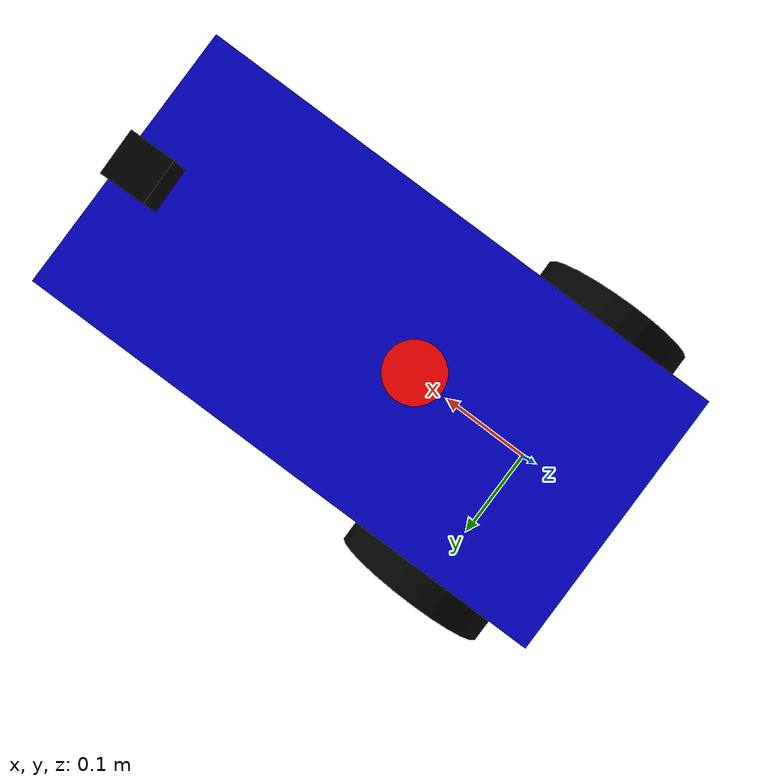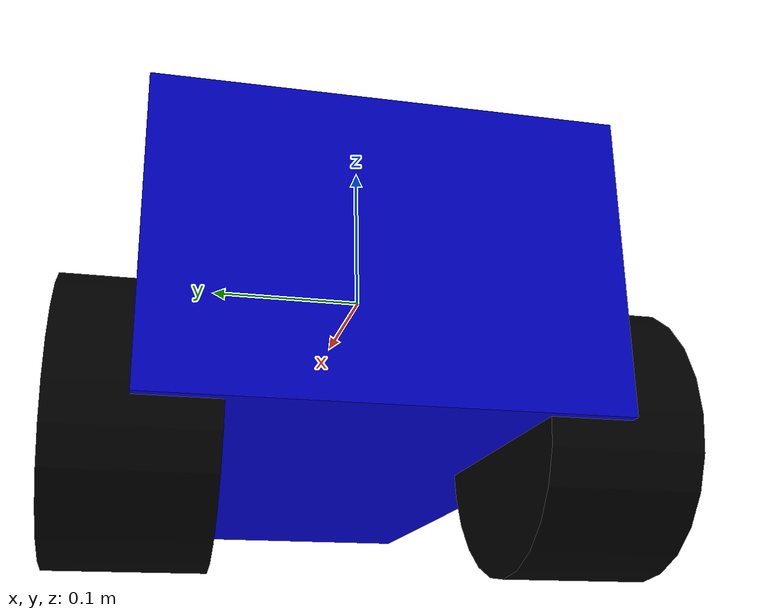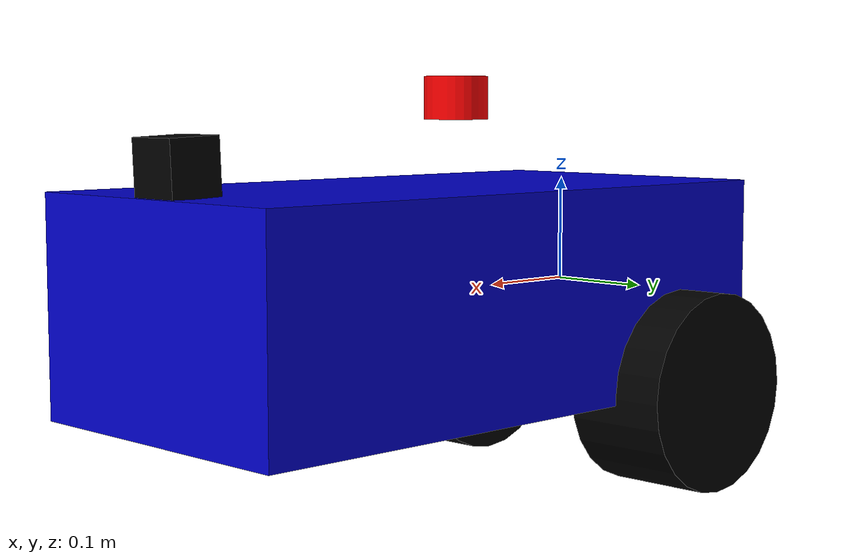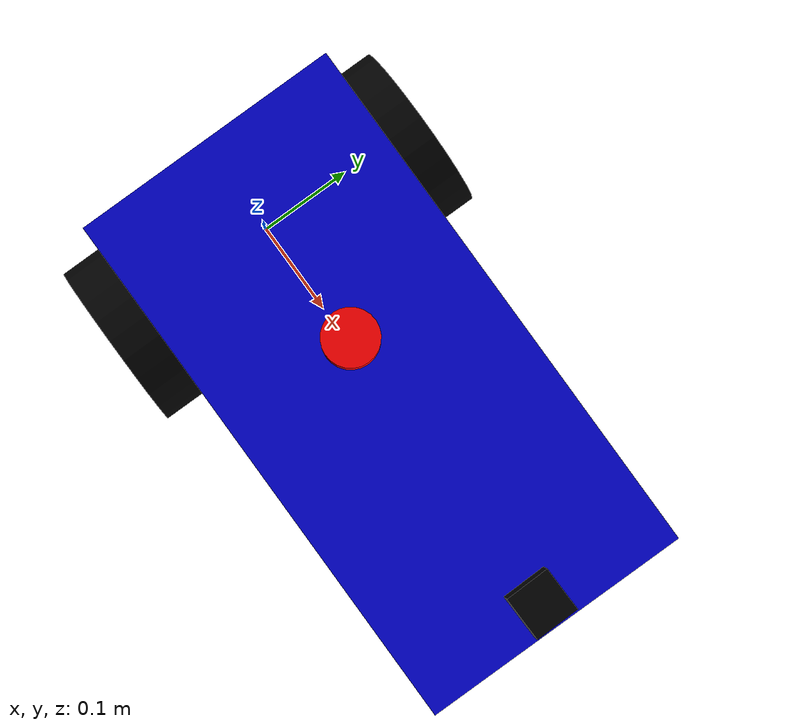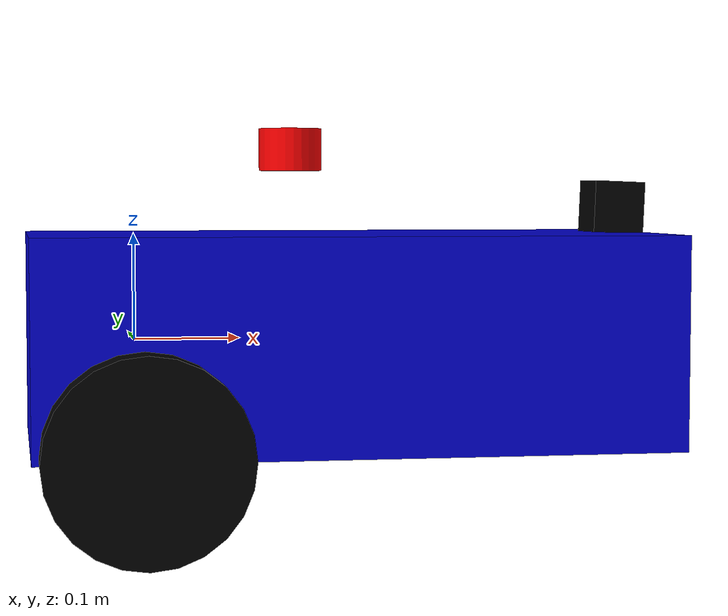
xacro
<?xml version="1.0"?>
<robot xmlns:xacro="http://www.ros.org/wiki/xacro" name="diffbot">

  <xacro:include filename="$(find diff_drive_hardware)/config/diffbot_description.xacro" />

  <ros2_control name="DiffBot" type="system">
    <hardware>
      <plugin>topic_based_ros2_control/TopicBasedSystem</plugin>
      <param name="joint_commands_topic">/robot_joint_commands</param>
      <param name="joint_states_topic">/robot_joint_states</param>
      <param name="trigger_joint_command_threshold">-1</param>
    </hardware>
    <joint name="left_wheel_joint">
      <command_interface name="velocity"/>
      <state_interface name="position"/>
      <state_interface name="velocity"/>
    </joint>
    <joint name="right_wheel_joint">
      <command_interface name="velocity"/>
      <state_interface name="position"/>
      <state_interface name="velocity"/>
    </joint>
  </ros2_control>

  <gazebo>
    <plugin name="gazebo_ros2_control" filename="libgazebo_ros2_control.so">
      <parameters>$(find diff_drive_hardware)/config/diffbot_controllers.yaml</parameters>
    </plugin>
  </gazebo>

</robot>

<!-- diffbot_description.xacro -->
<robot xmlns:xacro="http://www.ros.org/wiki/xacro">

  <!-- Base Link (Root Frame) -->

  <!-- Base Link -->
  <link name="base_link">
    <visual>
      <origin xyz="0.2 0 0" rpy="0 0 0"/>
      <geometry>
        <box size="0.6 0.3 0.2"/>
      </geometry>
      <material name="blue">
        <color rgba="0 0 0.8 1"/>
      </material>
    </visual>
    <collision>
      <geometry>
        <box size="0.2 0.3 0.1"/>
      </geometry>
    </collision>
    <inertial>
      <origin xyz="0.18 0.0 -0.02" rpy="0 0 0"/>
      <mass value="12.0"/>
      <inertia ixx="0.15" ixy="0" ixz="0" iyy="0.40" iyz="0" izz="0.45"/>
    </inertial>
  </link>

  <link name="imu_link">
    <visual>
      <geometry>
        <box size="0.04 0.04 0.02"/>
      </geometry>
      <material name="orange">
        <color rgba="1 0.5 0 1"/>
      </material>
    </visual>
    <inertial>
      <mass value="0.01"/>
      <inertia ixx="1e-6" ixy="0" ixz="0" iyy="1e-6" iyz="0" izz="1e-6"/>
    </inertial>
  </link>

  <!-- Left Wheel -->
  <link name="left_wheel">
    <visual>
      <geometry>
        <cylinder radius="0.0937" length="0.1"/>
      </geometry>
      <material name="black">
        <color rgba="0 0 0 1"/>
      </material>
    </visual>
    <collision>
      <geometry>
        <cylinder radius="0.0937" length="0.1"/>
      </geometry>
    </collision>
    <inertial>
      <mass value="0.1"/>
      <inertia ixx="0.00003" ixy="0" ixz="0" iyy="0.00003" iyz="0" izz="0.00005"/>
    </inertial>
  </link>

  <!-- Right Wheel -->
  <link name="right_wheel">
    <visual>
      <geometry>
        <cylinder radius="0.0937" length="0.1"/>
      </geometry>
      <material name="black">
        <color rgba="0 0 0 1"/>
      </material>
    </visual>
    <collision>
      <geometry>
        <cylinder radius="0.0937" length="0.1"/>
      </geometry>
    </collision>
    <inertial>
      <mass value="0.1"/>
      <inertia ixx="0.00003" ixy="0" ixz="0" iyy="0.00003" iyz="0" izz="0.00005"/>
    </inertial>
  </link>

  <!-- Left Wheel Joint -->
  <joint name="left_wheel_joint" type="continuous">
    <parent link="base_link"/>
    <child link="left_wheel"/>
    <origin xyz="0 0.1475 -0.0937" rpy="-1.5707 0 0"/>
    <axis xyz="0 0 1"/>
  </joint>

  <!-- Right Wheel Joint -->
  <joint name="right_wheel_joint" type="continuous">
    <parent link="base_link"/>
    <child link="right_wheel"/>
    <origin xyz="0 -0.1475 -0.0937" rpy="-1.5707 0 0"/>
    <axis xyz="0 0 1"/>
  </joint>

  <joint name="imu_joint" type="fixed">
    <parent link="base_link"/>
    <child link="imu_link"/>
    <origin xyz="0.4 0 0.05" rpy="0 0 0"/>
  </joint>

  <!-- Lidar Link -->
  <link name="base_laser">
    <visual>
      <geometry>
        <cylinder radius="0.03" length="0.04"/>
      </geometry>
      <material name="red">
        <color rgba="1 0 0 1"/>
      </material>
    </visual>
    <collision>
      <geometry>
        <cylinder radius="0.03" length="0.04"/>
      </geometry>
    </collision>
    <inertial>
      <mass value="0.125"/>
      <inertia ixx="0.0001" ixy="0" ixz="0" iyy="0.0001" iyz="0" izz="0.0001"/>
    </inertial>
  </link>

  <joint name="lidar_joint" type="fixed">
    <parent link="base_link"/>
    <child link="base_laser"/>
    <origin xyz="0.15 0 0.18" rpy="0 3.14159 -1.59116"/>
  </joint>

  <!-- Camera Link -->
  <link name="camera">
    <visual>
      <geometry>
        <box size="0.05 0.05 0.05"/>
      </geometry>
      <material name="black">
        <color rgba="0 0 0 1"/>
      </material>
    </visual>
    <collision>
      <geometry>
        <box size="0.05 0.05 0.05"/>
      </geometry>
    </collision>
    <inertial>
      <mass value="0.05"/>
      <inertia ixx="0.0001" ixy="0" ixz="0" iyy="0.0001" iyz="0" izz="0.0001"/>
    </inertial>
  </link>

  <joint name="camera_joint" type="fixed">
    <parent link="base_link"/>
    <child link="camera"/>
    <origin xyz="0.47 0 0.125" rpy="-1.6100 0 -1.5500"/>
  </joint>

</robot>
